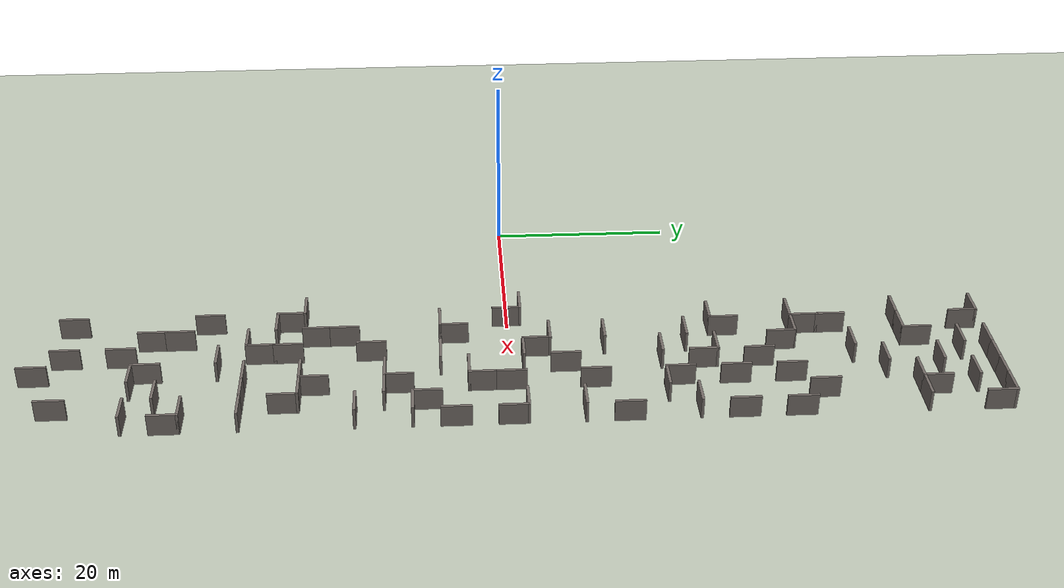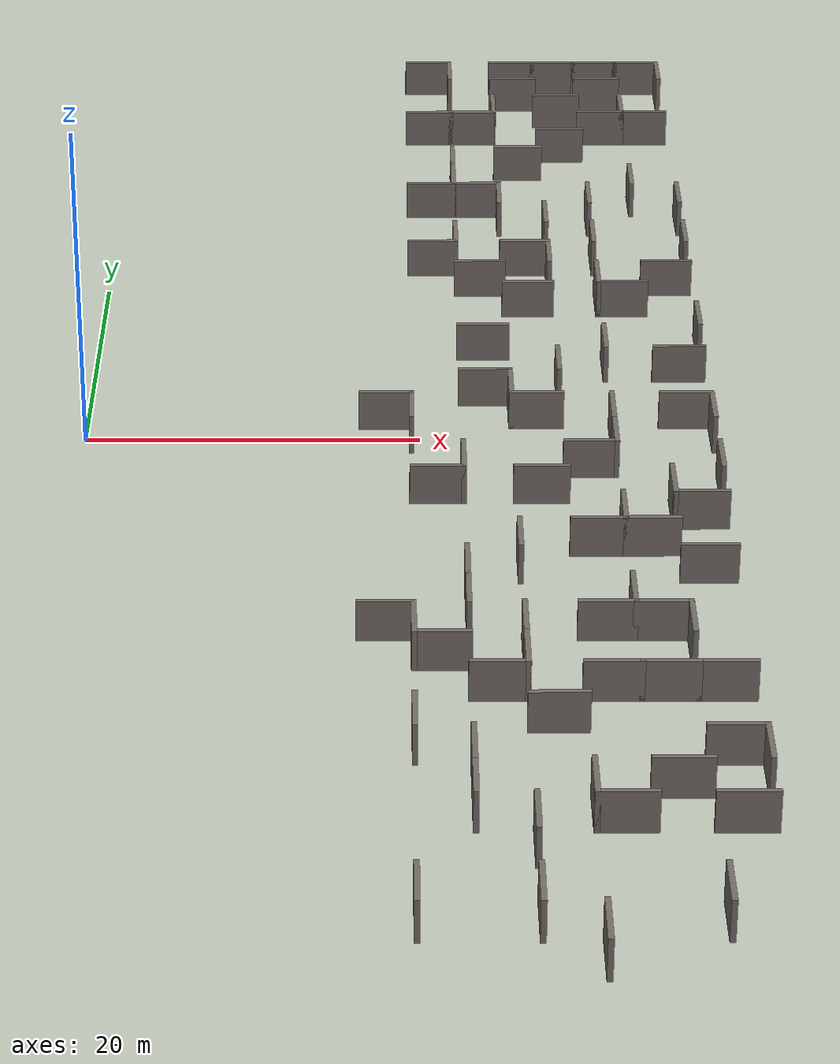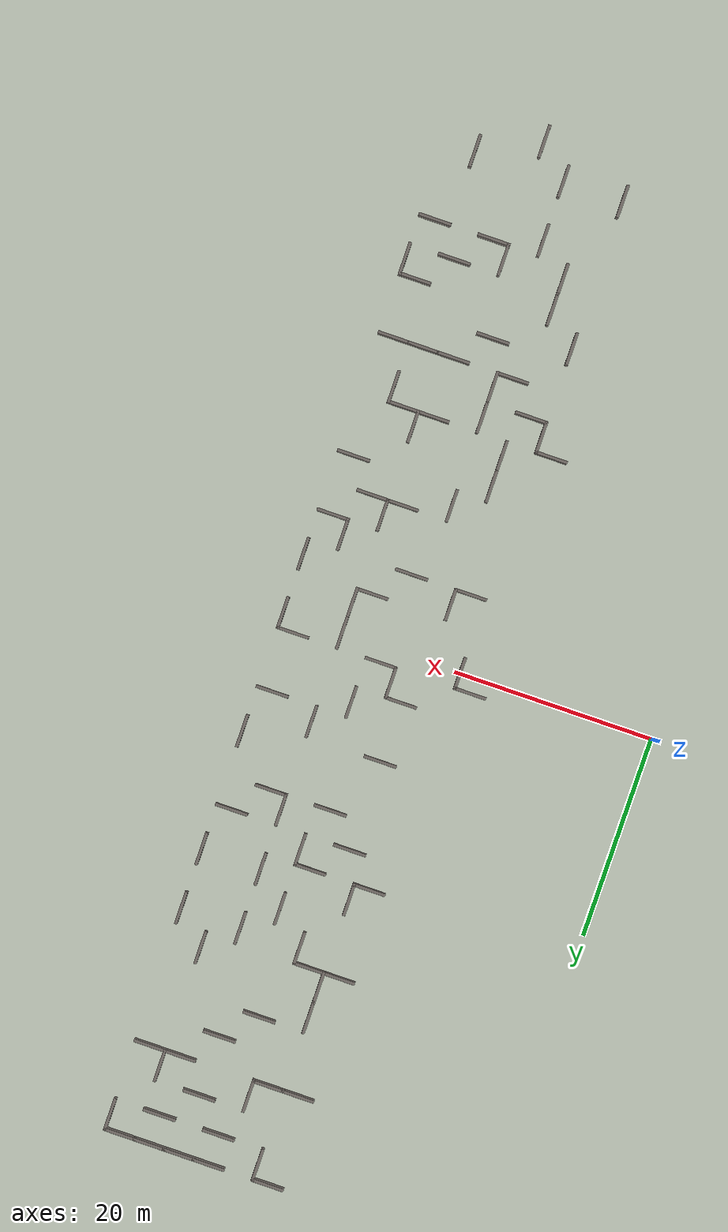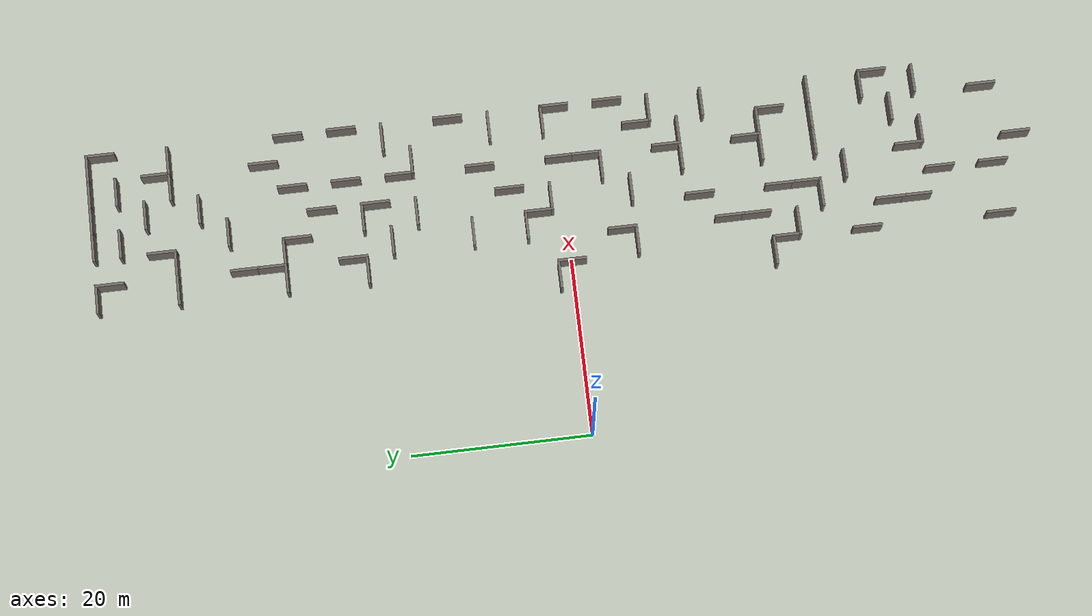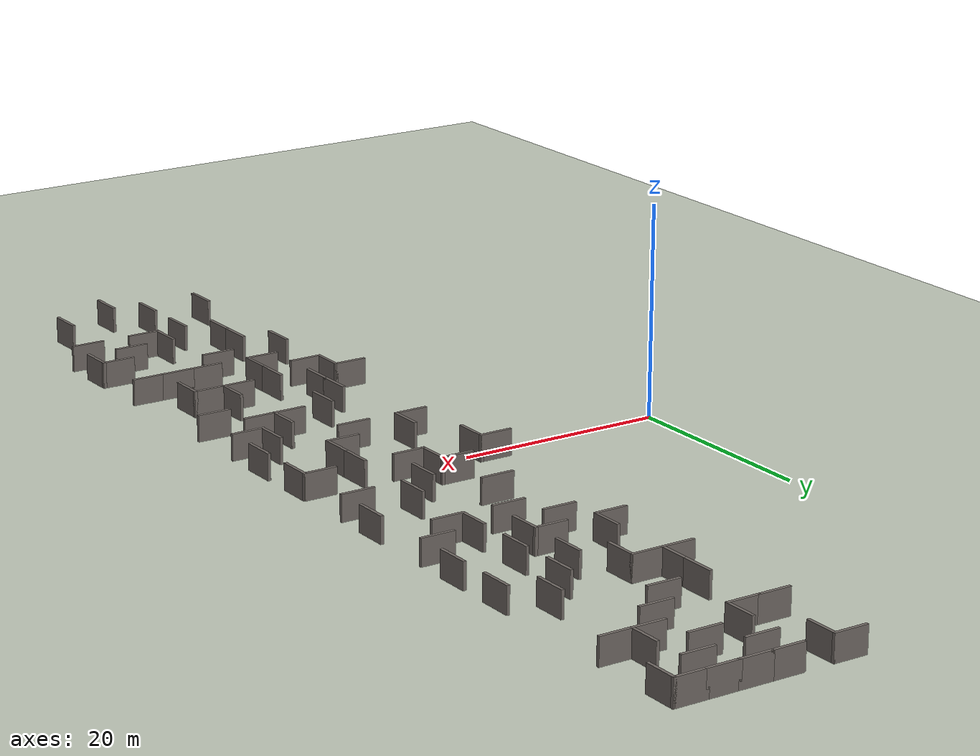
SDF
<sdf version="1.9">
 <world name="swap_world">
  <model name="ground_plane">
   <static>true</static>
   <link name="link">
    <collision name="collision">
     <geometry><plane><normal>0 0 1</normal><size>125 125</size></plane></geometry>
    </collision>
    <visual name="visual">
     <geometry><plane><normal>0 0 1</normal><size>125 125</size></plane></geometry>
     <material><ambient>0.75 0.78 0.72 1</ambient><diffuse>0.75 0.78 0.72 1</diffuse></material>
    </visual>
   </link>
  </model>
  <model name="wall_367">
   <static>true</static>
   <link name="l">
    <pose>19.50 -0.00 1.25 0 0 1.5708</pose>
    <collision name="c"><geometry><box><size>3.30 0.3 2.5</size></box></geometry></collision>
    <visual name="v">
     <geometry><box><size>3.30 0.3 2.5</size></box></geometry>
     <material><ambient>0.45 0.42 0.4 1</ambient><diffuse>0.45 0.42 0.4 1</diffuse></material>
    </visual>
   </link>
  </model>
  <model name="wall_368">
   <static>true</static>
   <link name="l">
    <pose>18.00 1.50 1.25 0 0 0.0000</pose>
    <collision name="c"><geometry><box><size>3.30 0.3 2.5</size></box></geometry></collision>
    <visual name="v">
     <geometry><box><size>3.30 0.3 2.5</size></box></geometry>
     <material><ambient>0.45 0.42 0.4 1</ambient><diffuse>0.45 0.42 0.4 1</diffuse></material>
    </visual>
   </link>
  </model>
  <model name="wall_369">
   <static>true</static>
   <link name="l">
    <pose>19.50 -24.00 1.25 0 0 1.5708</pose>
    <collision name="c"><geometry><box><size>3.30 0.3 2.5</size></box></geometry></collision>
    <visual name="v">
     <geometry><box><size>3.30 0.3 2.5</size></box></geometry>
     <material><ambient>0.45 0.42 0.4 1</ambient><diffuse>0.45 0.42 0.4 1</diffuse></material>
    </visual>
   </link>
  </model>
  <model name="wall_370">
   <static>true</static>
   <link name="l">
    <pose>18.00 -22.50 1.25 0 0 0.0000</pose>
    <collision name="c"><geometry><box><size>3.30 0.3 2.5</size></box></geometry></collision>
    <visual name="v">
     <geometry><box><size>3.30 0.3 2.5</size></box></geometry>
     <material><ambient>0.45 0.42 0.4 1</ambient><diffuse>0.45 0.42 0.4 1</diffuse></material>
    </visual>
   </link>
  </model>
  <model name="wall_371">
   <static>true</static>
   <link name="l">
    <pose>19.50 -33.00 1.25 0 0 1.5708</pose>
    <collision name="c"><geometry><box><size>3.30 0.3 2.5</size></box></geometry></collision>
    <visual name="v">
     <geometry><box><size>3.30 0.3 2.5</size></box></geometry>
     <material><ambient>0.45 0.42 0.4 1</ambient><diffuse>0.45 0.42 0.4 1</diffuse></material>
    </visual>
   </link>
  </model>
  <model name="wall_372">
   <static>true</static>
   <link name="l">
    <pose>19.50 -48.00 1.25 0 0 1.5708</pose>
    <collision name="c"><geometry><box><size>3.30 0.3 2.5</size></box></geometry></collision>
    <visual name="v">
     <geometry><box><size>3.30 0.3 2.5</size></box></geometry>
     <material><ambient>0.45 0.42 0.4 1</ambient><diffuse>0.45 0.42 0.4 1</diffuse></material>
    </visual>
   </link>
  </model>
  <model name="wall_373">
   <static>true</static>
   <link name="l">
    <pose>22.50 51.00 1.25 0 0 1.5708</pose>
    <collision name="c"><geometry><box><size>3.30 0.3 2.5</size></box></geometry></collision>
    <visual name="v">
     <geometry><box><size>3.30 0.3 2.5</size></box></geometry>
     <material><ambient>0.45 0.42 0.4 1</ambient><diffuse>0.45 0.42 0.4 1</diffuse></material>
    </visual>
   </link>
  </model>
  <model name="wall_374">
   <static>true</static>
   <link name="l">
    <pose>21.00 52.50 1.25 0 0 0.0000</pose>
    <collision name="c"><geometry><box><size>3.30 0.3 2.5</size></box></geometry></collision>
    <visual name="v">
     <geometry><box><size>3.30 0.3 2.5</size></box></geometry>
     <material><ambient>0.45 0.42 0.4 1</ambient><diffuse>0.45 0.42 0.4 1</diffuse></material>
    </visual>
   </link>
  </model>
  <model name="wall_375">
   <static>true</static>
   <link name="l">
    <pose>21.00 43.50 1.25 0 0 0.0000</pose>
    <collision name="c"><geometry><box><size>3.30 0.3 2.5</size></box></geometry></collision>
    <visual name="v">
     <geometry><box><size>3.30 0.3 2.5</size></box></geometry>
     <material><ambient>0.45 0.42 0.4 1</ambient><diffuse>0.45 0.42 0.4 1</diffuse></material>
    </visual>
   </link>
  </model>
  <model name="wall_376">
   <static>true</static>
   <link name="l">
    <pose>22.50 36.00 1.25 0 0 1.5708</pose>
    <collision name="c"><geometry><box><size>3.30 0.3 2.5</size></box></geometry></collision>
    <visual name="v">
     <geometry><box><size>3.30 0.3 2.5</size></box></geometry>
     <material><ambient>0.45 0.42 0.4 1</ambient><diffuse>0.45 0.42 0.4 1</diffuse></material>
    </visual>
   </link>
  </model>
  <model name="wall_377">
   <static>true</static>
   <link name="l">
    <pose>22.50 33.00 1.25 0 0 1.5708</pose>
    <collision name="c"><geometry><box><size>3.30 0.3 2.5</size></box></geometry></collision>
    <visual name="v">
     <geometry><box><size>3.30 0.3 2.5</size></box></geometry>
     <material><ambient>0.45 0.42 0.4 1</ambient><diffuse>0.45 0.42 0.4 1</diffuse></material>
    </visual>
   </link>
  </model>
  <model name="wall_378">
   <static>true</static>
   <link name="l">
    <pose>21.00 31.50 1.25 0 0 0.0000</pose>
    <collision name="c"><geometry><box><size>3.30 0.3 2.5</size></box></geometry></collision>
    <visual name="v">
     <geometry><box><size>3.30 0.3 2.5</size></box></geometry>
     <material><ambient>0.45 0.42 0.4 1</ambient><diffuse>0.45 0.42 0.4 1</diffuse></material>
    </visual>
   </link>
  </model>
  <model name="wall_379">
   <static>true</static>
   <link name="l">
    <pose>22.50 24.00 1.25 0 0 1.5708</pose>
    <collision name="c"><geometry><box><size>3.30 0.3 2.5</size></box></geometry></collision>
    <visual name="v">
     <geometry><box><size>3.30 0.3 2.5</size></box></geometry>
     <material><ambient>0.45 0.42 0.4 1</ambient><diffuse>0.45 0.42 0.4 1</diffuse></material>
    </visual>
   </link>
  </model>
  <model name="wall_380">
   <static>true</static>
   <link name="l">
    <pose>21.00 22.50 1.25 0 0 0.0000</pose>
    <collision name="c"><geometry><box><size>3.30 0.3 2.5</size></box></geometry></collision>
    <visual name="v">
     <geometry><box><size>3.30 0.3 2.5</size></box></geometry>
     <material><ambient>0.45 0.42 0.4 1</ambient><diffuse>0.45 0.42 0.4 1</diffuse></material>
    </visual>
   </link>
  </model>
  <model name="wall_381">
   <static>true</static>
   <link name="l">
    <pose>22.50 -6.00 1.25 0 0 1.5708</pose>
    <collision name="c"><geometry><box><size>3.30 0.3 2.5</size></box></geometry></collision>
    <visual name="v">
     <geometry><box><size>3.30 0.3 2.5</size></box></geometry>
     <material><ambient>0.45 0.42 0.4 1</ambient><diffuse>0.45 0.42 0.4 1</diffuse></material>
    </visual>
   </link>
  </model>
  <model name="wall_382">
   <static>true</static>
   <link name="l">
    <pose>21.00 -7.50 1.25 0 0 0.0000</pose>
    <collision name="c"><geometry><box><size>3.30 0.3 2.5</size></box></geometry></collision>
    <visual name="v">
     <geometry><box><size>3.30 0.3 2.5</size></box></geometry>
     <material><ambient>0.45 0.42 0.4 1</ambient><diffuse>0.45 0.42 0.4 1</diffuse></material>
    </visual>
   </link>
  </model>
  <model name="wall_383">
   <static>true</static>
   <link name="l">
    <pose>22.50 -18.00 1.25 0 0 1.5708</pose>
    <collision name="c"><geometry><box><size>3.30 0.3 2.5</size></box></geometry></collision>
    <visual name="v">
     <geometry><box><size>3.30 0.3 2.5</size></box></geometry>
     <material><ambient>0.45 0.42 0.4 1</ambient><diffuse>0.45 0.42 0.4 1</diffuse></material>
    </visual>
   </link>
  </model>
  <model name="wall_384">
   <static>true</static>
   <link name="l">
    <pose>22.50 -21.00 1.25 0 0 1.5708</pose>
    <collision name="c"><geometry><box><size>3.30 0.3 2.5</size></box></geometry></collision>
    <visual name="v">
     <geometry><box><size>3.30 0.3 2.5</size></box></geometry>
     <material><ambient>0.45 0.42 0.4 1</ambient><diffuse>0.45 0.42 0.4 1</diffuse></material>
    </visual>
   </link>
  </model>
  <model name="wall_385">
   <static>true</static>
   <link name="l">
    <pose>21.00 -25.50 1.25 0 0 0.0000</pose>
    <collision name="c"><geometry><box><size>3.30 0.3 2.5</size></box></geometry></collision>
    <visual name="v">
     <geometry><box><size>3.30 0.3 2.5</size></box></geometry>
     <material><ambient>0.45 0.42 0.4 1</ambient><diffuse>0.45 0.42 0.4 1</diffuse></material>
    </visual>
   </link>
  </model>
  <model name="wall_386">
   <static>true</static>
   <link name="l">
    <pose>22.50 -36.00 1.25 0 0 1.5708</pose>
    <collision name="c"><geometry><box><size>3.30 0.3 2.5</size></box></geometry></collision>
    <visual name="v">
     <geometry><box><size>3.30 0.3 2.5</size></box></geometry>
     <material><ambient>0.45 0.42 0.4 1</ambient><diffuse>0.45 0.42 0.4 1</diffuse></material>
    </visual>
   </link>
  </model>
  <model name="wall_387">
   <static>true</static>
   <link name="l">
    <pose>22.50 -39.00 1.25 0 0 1.5708</pose>
    <collision name="c"><geometry><box><size>3.30 0.3 2.5</size></box></geometry></collision>
    <visual name="v">
     <geometry><box><size>3.30 0.3 2.5</size></box></geometry>
     <material><ambient>0.45 0.42 0.4 1</ambient><diffuse>0.45 0.42 0.4 1</diffuse></material>
    </visual>
   </link>
  </model>
  <model name="wall_388">
   <static>true</static>
   <link name="l">
    <pose>25.50 45.00 1.25 0 0 1.5708</pose>
    <collision name="c"><geometry><box><size>3.30 0.3 2.5</size></box></geometry></collision>
    <visual name="v">
     <geometry><box><size>3.30 0.3 2.5</size></box></geometry>
     <material><ambient>0.45 0.42 0.4 1</ambient><diffuse>0.45 0.42 0.4 1</diffuse></material>
    </visual>
   </link>
  </model>
  <model name="wall_389">
   <static>true</static>
   <link name="l">
    <pose>24.00 43.50 1.25 0 0 0.0000</pose>
    <collision name="c"><geometry><box><size>3.30 0.3 2.5</size></box></geometry></collision>
    <visual name="v">
     <geometry><box><size>3.30 0.3 2.5</size></box></geometry>
     <material><ambient>0.45 0.42 0.4 1</ambient><diffuse>0.45 0.42 0.4 1</diffuse></material>
    </visual>
   </link>
  </model>
  <model name="wall_390">
   <static>true</static>
   <link name="l">
    <pose>25.50 30.00 1.25 0 0 1.5708</pose>
    <collision name="c"><geometry><box><size>3.30 0.3 2.5</size></box></geometry></collision>
    <visual name="v">
     <geometry><box><size>3.30 0.3 2.5</size></box></geometry>
     <material><ambient>0.45 0.42 0.4 1</ambient><diffuse>0.45 0.42 0.4 1</diffuse></material>
    </visual>
   </link>
  </model>
  <model name="wall_391">
   <static>true</static>
   <link name="l">
    <pose>24.00 31.50 1.25 0 0 0.0000</pose>
    <collision name="c"><geometry><box><size>3.30 0.3 2.5</size></box></geometry></collision>
    <visual name="v">
     <geometry><box><size>3.30 0.3 2.5</size></box></geometry>
     <material><ambient>0.45 0.42 0.4 1</ambient><diffuse>0.45 0.42 0.4 1</diffuse></material>
    </visual>
   </link>
  </model>
  <model name="wall_392">
   <static>true</static>
   <link name="l">
    <pose>24.00 19.50 1.25 0 0 0.0000</pose>
    <collision name="c"><geometry><box><size>3.30 0.3 2.5</size></box></geometry></collision>
    <visual name="v">
     <geometry><box><size>3.30 0.3 2.5</size></box></geometry>
     <material><ambient>0.45 0.42 0.4 1</ambient><diffuse>0.45 0.42 0.4 1</diffuse></material>
    </visual>
   </link>
  </model>
  <model name="wall_393">
   <static>true</static>
   <link name="l">
    <pose>24.00 10.50 1.25 0 0 0.0000</pose>
    <collision name="c"><geometry><box><size>3.30 0.3 2.5</size></box></geometry></collision>
    <visual name="v">
     <geometry><box><size>3.30 0.3 2.5</size></box></geometry>
     <material><ambient>0.45 0.42 0.4 1</ambient><diffuse>0.45 0.42 0.4 1</diffuse></material>
    </visual>
   </link>
  </model>
  <model name="wall_394">
   <static>true</static>
   <link name="l">
    <pose>25.50 3.00 1.25 0 0 1.5708</pose>
    <collision name="c"><geometry><box><size>3.30 0.3 2.5</size></box></geometry></collision>
    <visual name="v">
     <geometry><box><size>3.30 0.3 2.5</size></box></geometry>
     <material><ambient>0.45 0.42 0.4 1</ambient><diffuse>0.45 0.42 0.4 1</diffuse></material>
    </visual>
   </link>
  </model>
  <model name="wall_395">
   <static>true</static>
   <link name="l">
    <pose>24.00 4.50 1.25 0 0 0.0000</pose>
    <collision name="c"><geometry><box><size>3.30 0.3 2.5</size></box></geometry></collision>
    <visual name="v">
     <geometry><box><size>3.30 0.3 2.5</size></box></geometry>
     <material><ambient>0.45 0.42 0.4 1</ambient><diffuse>0.45 0.42 0.4 1</diffuse></material>
    </visual>
   </link>
  </model>
  <model name="wall_396">
   <static>true</static>
   <link name="l">
    <pose>25.50 -15.00 1.25 0 0 1.5708</pose>
    <collision name="c"><geometry><box><size>3.30 0.3 2.5</size></box></geometry></collision>
    <visual name="v">
     <geometry><box><size>3.30 0.3 2.5</size></box></geometry>
     <material><ambient>0.45 0.42 0.4 1</ambient><diffuse>0.45 0.42 0.4 1</diffuse></material>
    </visual>
   </link>
  </model>
  <model name="wall_397">
   <static>true</static>
   <link name="l">
    <pose>25.50 -24.00 1.25 0 0 1.5708</pose>
    <collision name="c"><geometry><box><size>3.30 0.3 2.5</size></box></geometry></collision>
    <visual name="v">
     <geometry><box><size>3.30 0.3 2.5</size></box></geometry>
     <material><ambient>0.45 0.42 0.4 1</ambient><diffuse>0.45 0.42 0.4 1</diffuse></material>
    </visual>
   </link>
  </model>
  <model name="wall_398">
   <static>true</static>
   <link name="l">
    <pose>25.50 -27.00 1.25 0 0 1.5708</pose>
    <collision name="c"><geometry><box><size>3.30 0.3 2.5</size></box></geometry></collision>
    <visual name="v">
     <geometry><box><size>3.30 0.3 2.5</size></box></geometry>
     <material><ambient>0.45 0.42 0.4 1</ambient><diffuse>0.45 0.42 0.4 1</diffuse></material>
    </visual>
   </link>
  </model>
  <model name="wall_399">
   <static>true</static>
   <link name="l">
    <pose>24.00 -28.50 1.25 0 0 0.0000</pose>
    <collision name="c"><geometry><box><size>3.30 0.3 2.5</size></box></geometry></collision>
    <visual name="v">
     <geometry><box><size>3.30 0.3 2.5</size></box></geometry>
     <material><ambient>0.45 0.42 0.4 1</ambient><diffuse>0.45 0.42 0.4 1</diffuse></material>
    </visual>
   </link>
  </model>
  <model name="wall_400">
   <static>true</static>
   <link name="l">
    <pose>25.50 -42.00 1.25 0 0 1.5708</pose>
    <collision name="c"><geometry><box><size>3.30 0.3 2.5</size></box></geometry></collision>
    <visual name="v">
     <geometry><box><size>3.30 0.3 2.5</size></box></geometry>
     <material><ambient>0.45 0.42 0.4 1</ambient><diffuse>0.45 0.42 0.4 1</diffuse></material>
    </visual>
   </link>
  </model>
  <model name="wall_401">
   <static>true</static>
   <link name="l">
    <pose>25.50 -48.00 1.25 0 0 1.5708</pose>
    <collision name="c"><geometry><box><size>3.30 0.3 2.5</size></box></geometry></collision>
    <visual name="v">
     <geometry><box><size>3.30 0.3 2.5</size></box></geometry>
     <material><ambient>0.45 0.42 0.4 1</ambient><diffuse>0.45 0.42 0.4 1</diffuse></material>
    </visual>
   </link>
  </model>
  <model name="wall_402">
   <static>true</static>
   <link name="l">
    <pose>27.00 52.50 1.25 0 0 0.0000</pose>
    <collision name="c"><geometry><box><size>3.30 0.3 2.5</size></box></geometry></collision>
    <visual name="v">
     <geometry><box><size>3.30 0.3 2.5</size></box></geometry>
     <material><ambient>0.45 0.42 0.4 1</ambient><diffuse>0.45 0.42 0.4 1</diffuse></material>
    </visual>
   </link>
  </model>
  <model name="wall_403">
   <static>true</static>
   <link name="l">
    <pose>27.00 49.50 1.25 0 0 0.0000</pose>
    <collision name="c"><geometry><box><size>3.30 0.3 2.5</size></box></geometry></collision>
    <visual name="v">
     <geometry><box><size>3.30 0.3 2.5</size></box></geometry>
     <material><ambient>0.45 0.42 0.4 1</ambient><diffuse>0.45 0.42 0.4 1</diffuse></material>
    </visual>
   </link>
  </model>
  <model name="wall_404">
   <static>true</static>
   <link name="l">
    <pose>27.00 37.50 1.25 0 0 0.0000</pose>
    <collision name="c"><geometry><box><size>3.30 0.3 2.5</size></box></geometry></collision>
    <visual name="v">
     <geometry><box><size>3.30 0.3 2.5</size></box></geometry>
     <material><ambient>0.45 0.42 0.4 1</ambient><diffuse>0.45 0.42 0.4 1</diffuse></material>
    </visual>
   </link>
  </model>
  <model name="wall_405">
   <static>true</static>
   <link name="l">
    <pose>28.50 27.00 1.25 0 0 1.5708</pose>
    <collision name="c"><geometry><box><size>3.30 0.3 2.5</size></box></geometry></collision>
    <visual name="v">
     <geometry><box><size>3.30 0.3 2.5</size></box></geometry>
     <material><ambient>0.45 0.42 0.4 1</ambient><diffuse>0.45 0.42 0.4 1</diffuse></material>
    </visual>
   </link>
  </model>
  <model name="wall_406">
   <static>true</static>
   <link name="l">
    <pose>28.50 21.00 1.25 0 0 1.5708</pose>
    <collision name="c"><geometry><box><size>3.30 0.3 2.5</size></box></geometry></collision>
    <visual name="v">
     <geometry><box><size>3.30 0.3 2.5</size></box></geometry>
     <material><ambient>0.45 0.42 0.4 1</ambient><diffuse>0.45 0.42 0.4 1</diffuse></material>
    </visual>
   </link>
  </model>
  <model name="wall_407">
   <static>true</static>
   <link name="l">
    <pose>27.00 22.50 1.25 0 0 0.0000</pose>
    <collision name="c"><geometry><box><size>3.30 0.3 2.5</size></box></geometry></collision>
    <visual name="v">
     <geometry><box><size>3.30 0.3 2.5</size></box></geometry>
     <material><ambient>0.45 0.42 0.4 1</ambient><diffuse>0.45 0.42 0.4 1</diffuse></material>
    </visual>
   </link>
  </model>
  <model name="wall_408">
   <static>true</static>
   <link name="l">
    <pose>27.00 16.50 1.25 0 0 0.0000</pose>
    <collision name="c"><geometry><box><size>3.30 0.3 2.5</size></box></geometry></collision>
    <visual name="v">
     <geometry><box><size>3.30 0.3 2.5</size></box></geometry>
     <material><ambient>0.45 0.42 0.4 1</ambient><diffuse>0.45 0.42 0.4 1</diffuse></material>
    </visual>
   </link>
  </model>
  <model name="wall_409">
   <static>true</static>
   <link name="l">
    <pose>28.50 6.00 1.25 0 0 1.5708</pose>
    <collision name="c"><geometry><box><size>3.30 0.3 2.5</size></box></geometry></collision>
    <visual name="v">
     <geometry><box><size>3.30 0.3 2.5</size></box></geometry>
     <material><ambient>0.45 0.42 0.4 1</ambient><diffuse>0.45 0.42 0.4 1</diffuse></material>
    </visual>
   </link>
  </model>
  <model name="wall_410">
   <static>true</static>
   <link name="l">
    <pose>27.00 1.50 1.25 0 0 0.0000</pose>
    <collision name="c"><geometry><box><size>3.30 0.3 2.5</size></box></geometry></collision>
    <visual name="v">
     <geometry><box><size>3.30 0.3 2.5</size></box></geometry>
     <material><ambient>0.45 0.42 0.4 1</ambient><diffuse>0.45 0.42 0.4 1</diffuse></material>
    </visual>
   </link>
  </model>
  <model name="wall_411">
   <static>true</static>
   <link name="l">
    <pose>27.00 -7.50 1.25 0 0 0.0000</pose>
    <collision name="c"><geometry><box><size>3.30 0.3 2.5</size></box></geometry></collision>
    <visual name="v">
     <geometry><box><size>3.30 0.3 2.5</size></box></geometry>
     <material><ambient>0.45 0.42 0.4 1</ambient><diffuse>0.45 0.42 0.4 1</diffuse></material>
    </visual>
   </link>
  </model>
  <model name="wall_412">
   <static>true</static>
   <link name="l">
    <pose>27.00 -31.50 1.25 0 0 0.0000</pose>
    <collision name="c"><geometry><box><size>3.30 0.3 2.5</size></box></geometry></collision>
    <visual name="v">
     <geometry><box><size>3.30 0.3 2.5</size></box></geometry>
     <material><ambient>0.45 0.42 0.4 1</ambient><diffuse>0.45 0.42 0.4 1</diffuse></material>
    </visual>
   </link>
  </model>
  <model name="wall_413">
   <static>true</static>
   <link name="l">
    <pose>28.50 -39.00 1.25 0 0 1.5708</pose>
    <collision name="c"><geometry><box><size>3.30 0.3 2.5</size></box></geometry></collision>
    <visual name="v">
     <geometry><box><size>3.30 0.3 2.5</size></box></geometry>
     <material><ambient>0.45 0.42 0.4 1</ambient><diffuse>0.45 0.42 0.4 1</diffuse></material>
    </visual>
   </link>
  </model>
  <model name="wall_414">
   <static>true</static>
   <link name="l">
    <pose>28.50 -51.00 1.25 0 0 1.5708</pose>
    <collision name="c"><geometry><box><size>3.30 0.3 2.5</size></box></geometry></collision>
    <visual name="v">
     <geometry><box><size>3.30 0.3 2.5</size></box></geometry>
     <material><ambient>0.45 0.42 0.4 1</ambient><diffuse>0.45 0.42 0.4 1</diffuse></material>
    </visual>
   </link>
  </model>
  <model name="wall_415">
   <static>true</static>
   <link name="l">
    <pose>30.00 52.50 1.25 0 0 0.0000</pose>
    <collision name="c"><geometry><box><size>3.30 0.3 2.5</size></box></geometry></collision>
    <visual name="v">
     <geometry><box><size>3.30 0.3 2.5</size></box></geometry>
     <material><ambient>0.45 0.42 0.4 1</ambient><diffuse>0.45 0.42 0.4 1</diffuse></material>
    </visual>
   </link>
  </model>
  <model name="wall_416">
   <static>true</static>
   <link name="l">
    <pose>30.00 46.50 1.25 0 0 0.0000</pose>
    <collision name="c"><geometry><box><size>3.30 0.3 2.5</size></box></geometry></collision>
    <visual name="v">
     <geometry><box><size>3.30 0.3 2.5</size></box></geometry>
     <material><ambient>0.45 0.42 0.4 1</ambient><diffuse>0.45 0.42 0.4 1</diffuse></material>
    </visual>
   </link>
  </model>
  <model name="wall_417">
   <static>true</static>
   <link name="l">
    <pose>30.00 40.50 1.25 0 0 0.0000</pose>
    <collision name="c"><geometry><box><size>3.30 0.3 2.5</size></box></geometry></collision>
    <visual name="v">
     <geometry><box><size>3.30 0.3 2.5</size></box></geometry>
     <material><ambient>0.45 0.42 0.4 1</ambient><diffuse>0.45 0.42 0.4 1</diffuse></material>
    </visual>
   </link>
  </model>
  <model name="wall_418">
   <static>true</static>
   <link name="l">
    <pose>31.50 30.00 1.25 0 0 1.5708</pose>
    <collision name="c"><geometry><box><size>3.30 0.3 2.5</size></box></geometry></collision>
    <visual name="v">
     <geometry><box><size>3.30 0.3 2.5</size></box></geometry>
     <material><ambient>0.45 0.42 0.4 1</ambient><diffuse>0.45 0.42 0.4 1</diffuse></material>
    </visual>
   </link>
  </model>
  <model name="wall_419">
   <static>true</static>
   <link name="l">
    <pose>31.50 24.00 1.25 0 0 1.5708</pose>
    <collision name="c"><geometry><box><size>3.30 0.3 2.5</size></box></geometry></collision>
    <visual name="v">
     <geometry><box><size>3.30 0.3 2.5</size></box></geometry>
     <material><ambient>0.45 0.42 0.4 1</ambient><diffuse>0.45 0.42 0.4 1</diffuse></material>
    </visual>
   </link>
  </model>
  <model name="wall_420">
   <static>true</static>
   <link name="l">
    <pose>31.50 18.00 1.25 0 0 1.5708</pose>
    <collision name="c"><geometry><box><size>3.30 0.3 2.5</size></box></geometry></collision>
    <visual name="v">
     <geometry><box><size>3.30 0.3 2.5</size></box></geometry>
     <material><ambient>0.45 0.42 0.4 1</ambient><diffuse>0.45 0.42 0.4 1</diffuse></material>
    </visual>
   </link>
  </model>
  <model name="wall_421">
   <static>true</static>
   <link name="l">
    <pose>31.50 9.00 1.25 0 0 1.5708</pose>
    <collision name="c"><geometry><box><size>3.30 0.3 2.5</size></box></geometry></collision>
    <visual name="v">
     <geometry><box><size>3.30 0.3 2.5</size></box></geometry>
     <material><ambient>0.45 0.42 0.4 1</ambient><diffuse>0.45 0.42 0.4 1</diffuse></material>
    </visual>
   </link>
  </model>
  <model name="wall_422">
   <static>true</static>
   <link name="l">
    <pose>31.50 -0.00 1.25 0 0 1.5708</pose>
    <collision name="c"><geometry><box><size>3.30 0.3 2.5</size></box></geometry></collision>
    <visual name="v">
     <geometry><box><size>3.30 0.3 2.5</size></box></geometry>
     <material><ambient>0.45 0.42 0.4 1</ambient><diffuse>0.45 0.42 0.4 1</diffuse></material>
    </visual>
   </link>
  </model>
  <model name="wall_423">
   <static>true</static>
   <link name="l">
    <pose>31.50 -3.00 1.25 0 0 1.5708</pose>
    <collision name="c"><geometry><box><size>3.30 0.3 2.5</size></box></geometry></collision>
    <visual name="v">
     <geometry><box><size>3.30 0.3 2.5</size></box></geometry>
     <material><ambient>0.45 0.42 0.4 1</ambient><diffuse>0.45 0.42 0.4 1</diffuse></material>
    </visual>
   </link>
  </model>
  <model name="wall_424">
   <static>true</static>
   <link name="l">
    <pose>30.00 -4.50 1.25 0 0 0.0000</pose>
    <collision name="c"><geometry><box><size>3.30 0.3 2.5</size></box></geometry></collision>
    <visual name="v">
     <geometry><box><size>3.30 0.3 2.5</size></box></geometry>
     <material><ambient>0.45 0.42 0.4 1</ambient><diffuse>0.45 0.42 0.4 1</diffuse></material>
    </visual>
   </link>
  </model>
  <model name="wall_425">
   <static>true</static>
   <link name="l">
    <pose>31.50 -12.00 1.25 0 0 1.5708</pose>
    <collision name="c"><geometry><box><size>3.30 0.3 2.5</size></box></geometry></collision>
    <visual name="v">
     <geometry><box><size>3.30 0.3 2.5</size></box></geometry>
     <material><ambient>0.45 0.42 0.4 1</ambient><diffuse>0.45 0.42 0.4 1</diffuse></material>
    </visual>
   </link>
  </model>
  <model name="wall_426">
   <static>true</static>
   <link name="l">
    <pose>30.00 -13.50 1.25 0 0 0.0000</pose>
    <collision name="c"><geometry><box><size>3.30 0.3 2.5</size></box></geometry></collision>
    <visual name="v">
     <geometry><box><size>3.30 0.3 2.5</size></box></geometry>
     <material><ambient>0.45 0.42 0.4 1</ambient><diffuse>0.45 0.42 0.4 1</diffuse></material>
    </visual>
   </link>
  </model>
  <model name="wall_427">
   <static>true</static>
   <link name="l">
    <pose>31.50 -21.00 1.25 0 0 1.5708</pose>
    <collision name="c"><geometry><box><size>3.30 0.3 2.5</size></box></geometry></collision>
    <visual name="v">
     <geometry><box><size>3.30 0.3 2.5</size></box></geometry>
     <material><ambient>0.45 0.42 0.4 1</ambient><diffuse>0.45 0.42 0.4 1</diffuse></material>
    </visual>
   </link>
  </model>
  <model name="wall_428">
   <static>true</static>
   <link name="l">
    <pose>30.00 -22.50 1.25 0 0 0.0000</pose>
    <collision name="c"><geometry><box><size>3.30 0.3 2.5</size></box></geometry></collision>
    <visual name="v">
     <geometry><box><size>3.30 0.3 2.5</size></box></geometry>
     <material><ambient>0.45 0.42 0.4 1</ambient><diffuse>0.45 0.42 0.4 1</diffuse></material>
    </visual>
   </link>
  </model>
  <model name="wall_429">
   <static>true</static>
   <link name="l">
    <pose>30.00 -28.50 1.25 0 0 0.0000</pose>
    <collision name="c"><geometry><box><size>3.30 0.3 2.5</size></box></geometry></collision>
    <visual name="v">
     <geometry><box><size>3.30 0.3 2.5</size></box></geometry>
     <material><ambient>0.45 0.42 0.4 1</ambient><diffuse>0.45 0.42 0.4 1</diffuse></material>
    </visual>
   </link>
  </model>
  <model name="wall_430">
   <static>true</static>
   <link name="l">
    <pose>30.00 -40.50 1.25 0 0 0.0000</pose>
    <collision name="c"><geometry><box><size>3.30 0.3 2.5</size></box></geometry></collision>
    <visual name="v">
     <geometry><box><size>3.30 0.3 2.5</size></box></geometry>
     <material><ambient>0.45 0.42 0.4 1</ambient><diffuse>0.45 0.42 0.4 1</diffuse></material>
    </visual>
   </link>
  </model>
  <model name="wall_431">
   <static>true</static>
   <link name="l">
    <pose>33.00 52.50 1.25 0 0 0.0000</pose>
    <collision name="c"><geometry><box><size>3.30 0.3 2.5</size></box></geometry></collision>
    <visual name="v">
     <geometry><box><size>3.30 0.3 2.5</size></box></geometry>
     <material><ambient>0.45 0.42 0.4 1</ambient><diffuse>0.45 0.42 0.4 1</diffuse></material>
    </visual>
   </link>
  </model>
  <model name="wall_432">
   <static>true</static>
   <link name="l">
    <pose>33.00 49.50 1.25 0 0 0.0000</pose>
    <collision name="c"><geometry><box><size>3.30 0.3 2.5</size></box></geometry></collision>
    <visual name="v">
     <geometry><box><size>3.30 0.3 2.5</size></box></geometry>
     <material><ambient>0.45 0.42 0.4 1</ambient><diffuse>0.45 0.42 0.4 1</diffuse></material>
    </visual>
   </link>
  </model>
  <model name="wall_433">
   <static>true</static>
   <link name="l">
    <pose>34.50 45.00 1.25 0 0 1.5708</pose>
    <collision name="c"><geometry><box><size>3.30 0.3 2.5</size></box></geometry></collision>
    <visual name="v">
     <geometry><box><size>3.30 0.3 2.5</size></box></geometry>
     <material><ambient>0.45 0.42 0.4 1</ambient><diffuse>0.45 0.42 0.4 1</diffuse></material>
    </visual>
   </link>
  </model>
  <model name="wall_434">
   <static>true</static>
   <link name="l">
    <pose>33.00 43.50 1.25 0 0 0.0000</pose>
    <collision name="c"><geometry><box><size>3.30 0.3 2.5</size></box></geometry></collision>
    <visual name="v">
     <geometry><box><size>3.30 0.3 2.5</size></box></geometry>
     <material><ambient>0.45 0.42 0.4 1</ambient><diffuse>0.45 0.42 0.4 1</diffuse></material>
    </visual>
   </link>
  </model>
  <model name="wall_435">
   <static>true</static>
   <link name="l">
    <pose>34.50 33.00 1.25 0 0 1.5708</pose>
    <collision name="c"><geometry><box><size>3.30 0.3 2.5</size></box></geometry></collision>
    <visual name="v">
     <geometry><box><size>3.30 0.3 2.5</size></box></geometry>
     <material><ambient>0.45 0.42 0.4 1</ambient><diffuse>0.45 0.42 0.4 1</diffuse></material>
    </visual>
   </link>
  </model>
  <model name="wall_436">
   <static>true</static>
   <link name="l">
    <pose>33.00 16.50 1.25 0 0 0.0000</pose>
    <collision name="c"><geometry><box><size>3.30 0.3 2.5</size></box></geometry></collision>
    <visual name="v">
     <geometry><box><size>3.30 0.3 2.5</size></box></geometry>
     <material><ambient>0.45 0.42 0.4 1</ambient><diffuse>0.45 0.42 0.4 1</diffuse></material>
    </visual>
   </link>
  </model>
  <model name="wall_437">
   <static>true</static>
   <link name="l">
    <pose>34.50 -9.00 1.25 0 0 1.5708</pose>
    <collision name="c"><geometry><box><size>3.30 0.3 2.5</size></box></geometry></collision>
    <visual name="v">
     <geometry><box><size>3.30 0.3 2.5</size></box></geometry>
     <material><ambient>0.45 0.42 0.4 1</ambient><diffuse>0.45 0.42 0.4 1</diffuse></material>
    </visual>
   </link>
  </model>
  <model name="wall_438">
   <static>true</static>
   <link name="l">
    <pose>33.00 -13.50 1.25 0 0 0.0000</pose>
    <collision name="c"><geometry><box><size>3.30 0.3 2.5</size></box></geometry></collision>
    <visual name="v">
     <geometry><box><size>3.30 0.3 2.5</size></box></geometry>
     <material><ambient>0.45 0.42 0.4 1</ambient><diffuse>0.45 0.42 0.4 1</diffuse></material>
    </visual>
   </link>
  </model>
  <model name="wall_439">
   <static>true</static>
   <link name="l">
    <pose>34.50 -24.00 1.25 0 0 1.5708</pose>
    <collision name="c"><geometry><box><size>3.30 0.3 2.5</size></box></geometry></collision>
    <visual name="v">
     <geometry><box><size>3.30 0.3 2.5</size></box></geometry>
     <material><ambient>0.45 0.42 0.4 1</ambient><diffuse>0.45 0.42 0.4 1</diffuse></material>
    </visual>
   </link>
  </model>
  <model name="wall_440">
   <static>true</static>
   <link name="l">
    <pose>33.00 -22.50 1.25 0 0 0.0000</pose>
    <collision name="c"><geometry><box><size>3.30 0.3 2.5</size></box></geometry></collision>
    <visual name="v">
     <geometry><box><size>3.30 0.3 2.5</size></box></geometry>
     <material><ambient>0.45 0.42 0.4 1</ambient><diffuse>0.45 0.42 0.4 1</diffuse></material>
    </visual>
   </link>
  </model>
  <model name="wall_441">
   <static>true</static>
   <link name="l">
    <pose>33.00 -28.50 1.25 0 0 0.0000</pose>
    <collision name="c"><geometry><box><size>3.30 0.3 2.5</size></box></geometry></collision>
    <visual name="v">
     <geometry><box><size>3.30 0.3 2.5</size></box></geometry>
     <material><ambient>0.45 0.42 0.4 1</ambient><diffuse>0.45 0.42 0.4 1</diffuse></material>
    </visual>
   </link>
  </model>
  <model name="wall_442">
   <static>true</static>
   <link name="l">
    <pose>33.00 -37.50 1.25 0 0 0.0000</pose>
    <collision name="c"><geometry><box><size>3.30 0.3 2.5</size></box></geometry></collision>
    <visual name="v">
     <geometry><box><size>3.30 0.3 2.5</size></box></geometry>
     <material><ambient>0.45 0.42 0.4 1</ambient><diffuse>0.45 0.42 0.4 1</diffuse></material>
    </visual>
   </link>
  </model>
  <model name="wall_443">
   <static>true</static>
   <link name="l">
    <pose>34.50 -48.00 1.25 0 0 1.5708</pose>
    <collision name="c"><geometry><box><size>3.30 0.3 2.5</size></box></geometry></collision>
    <visual name="v">
     <geometry><box><size>3.30 0.3 2.5</size></box></geometry>
     <material><ambient>0.45 0.42 0.4 1</ambient><diffuse>0.45 0.42 0.4 1</diffuse></material>
    </visual>
   </link>
  </model>
  <model name="wall_444">
   <static>true</static>
   <link name="l">
    <pose>37.50 51.00 1.25 0 0 1.5708</pose>
    <collision name="c"><geometry><box><size>3.30 0.3 2.5</size></box></geometry></collision>
    <visual name="v">
     <geometry><box><size>3.30 0.3 2.5</size></box></geometry>
     <material><ambient>0.45 0.42 0.4 1</ambient><diffuse>0.45 0.42 0.4 1</diffuse></material>
    </visual>
   </link>
  </model>
  <model name="wall_445">
   <static>true</static>
   <link name="l">
    <pose>36.00 52.50 1.25 0 0 0.0000</pose>
    <collision name="c"><geometry><box><size>3.30 0.3 2.5</size></box></geometry></collision>
    <visual name="v">
     <geometry><box><size>3.30 0.3 2.5</size></box></geometry>
     <material><ambient>0.45 0.42 0.4 1</ambient><diffuse>0.45 0.42 0.4 1</diffuse></material>
    </visual>
   </link>
  </model>
  <model name="wall_446">
   <static>true</static>
   <link name="l">
    <pose>36.00 43.50 1.25 0 0 0.0000</pose>
    <collision name="c"><geometry><box><size>3.30 0.3 2.5</size></box></geometry></collision>
    <visual name="v">
     <geometry><box><size>3.30 0.3 2.5</size></box></geometry>
     <material><ambient>0.45 0.42 0.4 1</ambient><diffuse>0.45 0.42 0.4 1</diffuse></material>
    </visual>
   </link>
  </model>
  <model name="wall_447">
   <static>true</static>
   <link name="l">
    <pose>37.50 30.00 1.25 0 0 1.5708</pose>
    <collision name="c"><geometry><box><size>3.30 0.3 2.5</size></box></geometry></collision>
    <visual name="v">
     <geometry><box><size>3.30 0.3 2.5</size></box></geometry>
     <material><ambient>0.45 0.42 0.4 1</ambient><diffuse>0.45 0.42 0.4 1</diffuse></material>
    </visual>
   </link>
  </model>
  <model name="wall_448">
   <static>true</static>
   <link name="l">
    <pose>37.50 24.00 1.25 0 0 1.5708</pose>
    <collision name="c"><geometry><box><size>3.30 0.3 2.5</size></box></geometry></collision>
    <visual name="v">
     <geometry><box><size>3.30 0.3 2.5</size></box></geometry>
     <material><ambient>0.45 0.42 0.4 1</ambient><diffuse>0.45 0.42 0.4 1</diffuse></material>
    </visual>
   </link>
  </model>
  <model name="wall_449">
   <static>true</static>
   <link name="l">
    <pose>36.00 19.50 1.25 0 0 0.0000</pose>
    <collision name="c"><geometry><box><size>3.30 0.3 2.5</size></box></geometry></collision>
    <visual name="v">
     <geometry><box><size>3.30 0.3 2.5</size></box></geometry>
     <material><ambient>0.45 0.42 0.4 1</ambient><diffuse>0.45 0.42 0.4 1</diffuse></material>
    </visual>
   </link>
  </model>
  <model name="wall_450">
   <static>true</static>
   <link name="l">
    <pose>37.50 12.00 1.25 0 0 1.5708</pose>
    <collision name="c"><geometry><box><size>3.30 0.3 2.5</size></box></geometry></collision>
    <visual name="v">
     <geometry><box><size>3.30 0.3 2.5</size></box></geometry>
     <material><ambient>0.45 0.42 0.4 1</ambient><diffuse>0.45 0.42 0.4 1</diffuse></material>
    </visual>
   </link>
  </model>
  <model name="wall_451">
   <static>true</static>
   <link name="l">
    <pose>36.00 7.50 1.25 0 0 0.0000</pose>
    <collision name="c"><geometry><box><size>3.30 0.3 2.5</size></box></geometry></collision>
    <visual name="v">
     <geometry><box><size>3.30 0.3 2.5</size></box></geometry>
     <material><ambient>0.45 0.42 0.4 1</ambient><diffuse>0.45 0.42 0.4 1</diffuse></material>
    </visual>
   </link>
  </model>
  <model name="wall_452">
   <static>true</static>
   <link name="l">
    <pose>37.50 -0.00 1.25 0 0 1.5708</pose>
    <collision name="c"><geometry><box><size>3.30 0.3 2.5</size></box></geometry></collision>
    <visual name="v">
     <geometry><box><size>3.30 0.3 2.5</size></box></geometry>
     <material><ambient>0.45 0.42 0.4 1</ambient><diffuse>0.45 0.42 0.4 1</diffuse></material>
    </visual>
   </link>
  </model>
  <model name="wall_453">
   <static>true</static>
   <link name="l">
    <pose>36.00 1.50 1.25 0 0 0.0000</pose>
    <collision name="c"><geometry><box><size>3.30 0.3 2.5</size></box></geometry></collision>
    <visual name="v">
     <geometry><box><size>3.30 0.3 2.5</size></box></geometry>
     <material><ambient>0.45 0.42 0.4 1</ambient><diffuse>0.45 0.42 0.4 1</diffuse></material>
    </visual>
   </link>
  </model>
  <model name="wall_454">
   <static>true</static>
   <link name="l">
    <pose>37.50 -6.00 1.25 0 0 1.5708</pose>
    <collision name="c"><geometry><box><size>3.30 0.3 2.5</size></box></geometry></collision>
    <visual name="v">
     <geometry><box><size>3.30 0.3 2.5</size></box></geometry>
     <material><ambient>0.45 0.42 0.4 1</ambient><diffuse>0.45 0.42 0.4 1</diffuse></material>
    </visual>
   </link>
  </model>
  <model name="wall_455">
   <static>true</static>
   <link name="l">
    <pose>36.00 -10.50 1.25 0 0 0.0000</pose>
    <collision name="c"><geometry><box><size>3.30 0.3 2.5</size></box></geometry></collision>
    <visual name="v">
     <geometry><box><size>3.30 0.3 2.5</size></box></geometry>
     <material><ambient>0.45 0.42 0.4 1</ambient><diffuse>0.45 0.42 0.4 1</diffuse></material>
    </visual>
   </link>
  </model>
  <model name="wall_456">
   <static>true</static>
   <link name="l">
    <pose>36.00 -16.50 1.25 0 0 0.0000</pose>
    <collision name="c"><geometry><box><size>3.30 0.3 2.5</size></box></geometry></collision>
    <visual name="v">
     <geometry><box><size>3.30 0.3 2.5</size></box></geometry>
     <material><ambient>0.45 0.42 0.4 1</ambient><diffuse>0.45 0.42 0.4 1</diffuse></material>
    </visual>
   </link>
  </model>
  <model name="wall_457">
   <static>true</static>
   <link name="l">
    <pose>36.00 -28.50 1.25 0 0 0.0000</pose>
    <collision name="c"><geometry><box><size>3.30 0.3 2.5</size></box></geometry></collision>
    <visual name="v">
     <geometry><box><size>3.30 0.3 2.5</size></box></geometry>
     <material><ambient>0.45 0.42 0.4 1</ambient><diffuse>0.45 0.42 0.4 1</diffuse></material>
    </visual>
   </link>
  </model>
  <model name="wall_458">
   <static>true</static>
   <link name="l">
    <pose>37.50 -36.00 1.25 0 0 1.5708</pose>
    <collision name="c"><geometry><box><size>3.30 0.3 2.5</size></box></geometry></collision>
    <visual name="v">
     <geometry><box><size>3.30 0.3 2.5</size></box></geometry>
     <material><ambient>0.45 0.42 0.4 1</ambient><diffuse>0.45 0.42 0.4 1</diffuse></material>
    </visual>
   </link>
  </model>
  <model name="wall_459">
   <static>true</static>
   <link name="l">
    <pose>36.00 -34.50 1.25 0 0 0.0000</pose>
    <collision name="c"><geometry><box><size>3.30 0.3 2.5</size></box></geometry></collision>
    <visual name="v">
     <geometry><box><size>3.30 0.3 2.5</size></box></geometry>
     <material><ambient>0.45 0.42 0.4 1</ambient><diffuse>0.45 0.42 0.4 1</diffuse></material>
    </visual>
   </link>
  </model>
  <model name="wall_460">
   <static>true</static>
   <link name="l">
    <pose>36.00 -40.50 1.25 0 0 0.0000</pose>
    <collision name="c"><geometry><box><size>3.30 0.3 2.5</size></box></geometry></collision>
    <visual name="v">
     <geometry><box><size>3.30 0.3 2.5</size></box></geometry>
     <material><ambient>0.45 0.42 0.4 1</ambient><diffuse>0.45 0.42 0.4 1</diffuse></material>
    </visual>
   </link>
  </model>
 </world>
</sdf>
